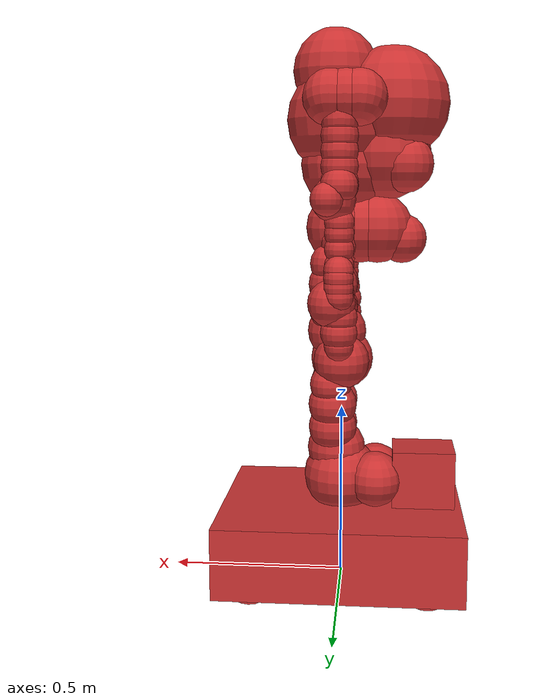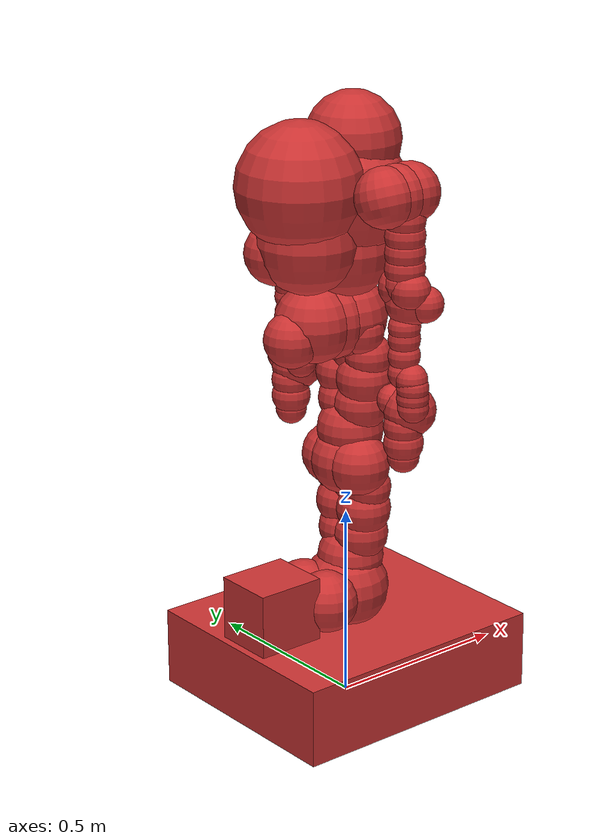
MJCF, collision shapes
<mujoco model="rby1">
  <option timestep="0.001" integrator="implicitfast" solver="Newton" iterations="80" tolerance="1e-7"/>
  <compiler angle="radian"/>
  <size memory="32M"/>
  <visual>
    <global offwidth="800" offheight="800"/>
    <map force="0.1" zfar="30"/>
    <rgba haze="0.15 0.25 0.35 1"/>
  </visual>
  <default>
    <material shininess="0.25"/>
    <position ctrllimited="true" kp="4000" kv="400"/>
    <default class="visual">
      <material shininess="0.5"/>
      <joint range="0 0" armature="0" damping="0"/>
      <geom type="mesh" contype="0" conaffinity="0" group="2" material="black"/>
    </default>
    <default class="collision">
      <material shininess="0.5"/>
      <joint range="0 0" armature="0" damping="0"/>
      <geom group="3" material="red"/>
    </default>
  </default>
  <asset>
    <texture type="skybox" builtin="gradient" rgb1="0.3 0.5 0.7" rgb2="0 0 0" width="512" height="3072"/>
    <texture type="2d" name="plane" builtin="checker" mark="cross" rgb1="0.2 0.3 0.4" rgb2="0.1 0.15 0.2" markrgb="0.8 0.8 0.8" width="512" height="512"/>
    <material name="plane" texture="plane" texuniform="true" reflectance="0.3"/>
    <material name="black" rgba="0.2 0.2 0.2 1"/>
    <material name="red" rgba="0.8 0.2 0.2 0.4"/>
    <material name="0,0,0" specular="1" shininess="1" rgba="0 0 0 1"/>
    <material name="10,10,10_LINK_6" specular="1" shininess="0.2" rgba="0.039216 0.039216 0.039216 1"/>
    <material name="10,10,10" specular="0.039216" shininess="1" rgba="0.039216 0.039216 0.039216 1"/>
    <material name="163,163,175" specular="1" shininess="0.2" rgba="0.639216 0.639216 0.686275 1"/>
    <material name="178,0,0" specular="1" shininess="0.2" rgba="0.698039 0 0 1"/>
    <material name="190,188,186" specular="1" shininess="0.2" rgba="0.745098 0.737255 0.729412 1"/>
    <material name="191,191,191" specular="0" shininess="0.3" rgba="0.74902 0.74902 0.74902 1"/>
    <material name="192,192,192" specular="1" shininess="0.2" rgba="0.752941 0.752941 0.752941 1"/>
    <material name="216,214,214" specular="1" shininess="0.2" rgba="0.847059 0.839216 0.839216 1"/>
    <material name="237,255,168" specular="1" shininess="0.2" rgba="0.929412 1 0.658824 1"/>
    <material name="242,236,238" specular="1" shininess="0.2" rgba="0.94902 0.92549 0.933333 1"/>
    <material name="244,244,244" specular="0.956863" shininess="1" rgba="0.956863 0.956863 0.956863 1"/>
    <material name="25,25,25" specular="1" shininess="0.8" rgba="0.1 0.1 0.1 1"/>
    <material name="254,254,255_LINK_6" specular="1" shininess="0.2" rgba="0.996078 0.996078 1 1"/>
    <material name="254,254,255" specular="0.997385" shininess="1" rgba="0.996078 0.996078 1 1"/>
    <material name="65,55,50" specular="1" shininess="0.2" rgba="0.254902 0.215686 0.196078 1"/>
    <material name="65,65,65" specular="0.254902" shininess="1" rgba="0.254902 0.254902 0.254902 1"/>
    <material name="69,69,69_1" specular="0" shininess="1" rgba="0.270588 0.270588 0.270588 1"/>
    <material name="69,69,69" specular="1" shininess="1" rgba="0.270588 0.270588 0.270588 1"/>
    <material name="70,70,70_FINGER" specular="0.27451" shininess="1" rgba="0.27451 0.27451 0.27451 1"/>
    <material name="70,70,70" specular="1" shininess="0.2" rgba="0.27451 0.27451 0.27451 1"/>
    <material name="79,79,79" specular="1" shininess="0.2" rgba="0.309804 0.309804 0.309804 1"/>
    <material name="80,80,80" specular="0" shininess="0.5" rgba="0.313725 0.313725 0.313725 1"/>
    <material name="156,168,171" specular="1" shininess="0.2" rgba="0.611765 0.658824 0.670588 1"/>
    <material name="130,130,130" specular="0" shininess="0.2" rgba="0.509804 0.509804 0.509804 1"/>
    <material name="90,90,90" specular="0.352941" shininess="1" rgba="0.352941 0.352941 0.352941 1"/>
    <material name="255,255,255" specular="1" shininess="0.2"/>
    <material name="235,235,235" specular="1" shininess="0.2" rgba="0.921569 0.921569 0.921569 1"/>
    <mesh name="base_0" file="././assets/base/base_0.obj"/>
    <mesh name="base_1" file="././assets/base/base_1.obj"/>
    <mesh name="base_2" file="././assets/base/base_2.obj"/>
    <mesh name="base_3" file="././assets/base/base_3.obj"/>
    <mesh name="base_4" file="././assets/base/base_4.obj"/>
    <mesh name="base_5" file="././assets/base/base_5.obj"/>
    <mesh name="base_6" file="././assets/base/base_6.obj"/>
    <mesh name="base_7" file="././assets/base/base_7.obj"/>
    <mesh name="MECANUM_WHEEL" file="././assets/MECANUM_WHEEL/MECANUM_WHEEL.obj"/>
    <mesh name="MECANUM_WHEEL_collision_0" file="././assets/MECANUM_WHEEL/MECANUM_WHEEL_collision_0.obj"/>
    <mesh name="MECANUM_WHEEL_collision_1" file="././assets/MECANUM_WHEEL/MECANUM_WHEEL_collision_1.obj"/>
    <mesh name="MECANUM_WHEEL_collision_2" file="././assets/MECANUM_WHEEL/MECANUM_WHEEL_collision_2.obj"/>
    <mesh name="MECANUM_WHEEL_collision_3" file="././assets/MECANUM_WHEEL/MECANUM_WHEEL_collision_3.obj"/>
    <mesh name="MECANUM_WHEEL_collision_4" file="././assets/MECANUM_WHEEL/MECANUM_WHEEL_collision_4.obj"/>
    <mesh name="MECANUM_WHEEL_collision_5" file="././assets/MECANUM_WHEEL/MECANUM_WHEEL_collision_5.obj"/>
    <mesh name="MECANUM_WHEEL_collision_6" file="././assets/MECANUM_WHEEL/MECANUM_WHEEL_collision_6.obj"/>
    <mesh name="MECANUM_WHEEL_collision_7" file="././assets/MECANUM_WHEEL/MECANUM_WHEEL_collision_7.obj"/>
    <mesh name="MECANUM_WHEEL_collision_8" file="././assets/MECANUM_WHEEL/MECANUM_WHEEL_collision_8.obj"/>
    <mesh name="MECANUM_WHEEL_collision_9" file="././assets/MECANUM_WHEEL/MECANUM_WHEEL_collision_9.obj"/>
    <mesh name="MECANUM_WHEEL_collision_10" file="././assets/MECANUM_WHEEL/MECANUM_WHEEL_collision_10.obj"/>
    <mesh name="MECANUM_WHEEL_collision_11" file="././assets/MECANUM_WHEEL/MECANUM_WHEEL_collision_11.obj"/>
    <mesh name="MECANUM_WHEEL_collision_12" file="././assets/MECANUM_WHEEL/MECANUM_WHEEL_collision_12.obj"/>
    <mesh name="MECANUM_WHEEL_collision_13" file="././assets/MECANUM_WHEEL/MECANUM_WHEEL_collision_13.obj"/>
    <mesh name="MECANUM_WHEEL_collision_14" file="././assets/MECANUM_WHEEL/MECANUM_WHEEL_collision_14.obj"/>
    <mesh name="MECANUM_WHEEL_collision_15" file="././assets/MECANUM_WHEEL/MECANUM_WHEEL_collision_15.obj"/>
    <mesh name="MECANUM_WHEEL_collision_16" file="././assets/MECANUM_WHEEL/MECANUM_WHEEL_collision_16.obj"/>
    <mesh name="MECANUM_WHEEL_collision_17" file="././assets/MECANUM_WHEEL/MECANUM_WHEEL_collision_17.obj"/>
    <mesh name="MECANUM_WHEEL_collision_18" file="././assets/MECANUM_WHEEL/MECANUM_WHEEL_collision_18.obj"/>
    <mesh name="MECANUM_WHEEL_collision_19" file="././assets/MECANUM_WHEEL/MECANUM_WHEEL_collision_19.obj"/>
    <mesh name="MECANUM_WHEEL_collision_20" file="././assets/MECANUM_WHEEL/MECANUM_WHEEL_collision_20.obj"/>
    <mesh name="MECANUM_WHEEL_collision_21" file="././assets/MECANUM_WHEEL/MECANUM_WHEEL_collision_21.obj"/>
    <mesh name="MECANUM_WHEEL_collision_22" file="././assets/MECANUM_WHEEL/MECANUM_WHEEL_collision_22.obj"/>
    <mesh name="MECANUM_WHEEL_collision_23" file="././assets/MECANUM_WHEEL/MECANUM_WHEEL_collision_23.obj"/>
    <mesh name="MECANUM_WHEEL_collision_24" file="././assets/MECANUM_WHEEL/MECANUM_WHEEL_collision_24.obj"/>
    <mesh name="MECANUM_WHEEL_collision_25" file="././assets/MECANUM_WHEEL/MECANUM_WHEEL_collision_25.obj"/>
    <mesh name="MECANUM_WHEEL_collision_26" file="././assets/MECANUM_WHEEL/MECANUM_WHEEL_collision_26.obj"/>
    <mesh name="MECANUM_WHEEL_collision_27" file="././assets/MECANUM_WHEEL/MECANUM_WHEEL_collision_27.obj"/>
    <mesh name="MECANUM_WHEEL_collision_28" file="././assets/MECANUM_WHEEL/MECANUM_WHEEL_collision_28.obj"/>
    <mesh name="MECANUM_WHEEL_collision_29" file="././assets/MECANUM_WHEEL/MECANUM_WHEEL_collision_29.obj"/>
    <mesh name="MECANUM_WHEEL_collision_30" file="././assets/MECANUM_WHEEL/MECANUM_WHEEL_collision_30.obj"/>
    <mesh name="MECANUM_WHEEL_collision_31" file="././assets/MECANUM_WHEEL/MECANUM_WHEEL_collision_31.obj"/>
    <mesh name="MECANUM_WHEEL_collision_32" file="././assets/MECANUM_WHEEL/MECANUM_WHEEL_collision_32.obj"/>
    <mesh name="MECANUM_WHEEL_collision_33" file="././assets/MECANUM_WHEEL/MECANUM_WHEEL_collision_33.obj"/>
    <mesh name="MECANUM_WHEEL_collision_34" file="././assets/MECANUM_WHEEL/MECANUM_WHEEL_collision_34.obj"/>
    <mesh name="MECANUM_WHEEL_collision_35" file="././assets/MECANUM_WHEEL/MECANUM_WHEEL_collision_35.obj"/>
    <mesh name="MECANUM_WHEEL_collision_36" file="././assets/MECANUM_WHEEL/MECANUM_WHEEL_collision_36.obj"/>
    <mesh name="MECANUM_WHEEL_collision_37" file="././assets/MECANUM_WHEEL/MECANUM_WHEEL_collision_37.obj"/>
    <mesh name="MECANUM_WHEEL_collision_38" file="././assets/MECANUM_WHEEL/MECANUM_WHEEL_collision_38.obj"/>
    <mesh name="MECANUM_WHEEL_collision_39" file="././assets/MECANUM_WHEEL/MECANUM_WHEEL_collision_39.obj"/>
    <mesh name="MECANUM_WHEEL_collision_40" file="././assets/MECANUM_WHEEL/MECANUM_WHEEL_collision_40.obj"/>
    <mesh name="MECANUM_WHEEL_collision_41" file="././assets/MECANUM_WHEEL/MECANUM_WHEEL_collision_41.obj"/>
    <mesh name="MECANUM_WHEEL_collision_42" file="././assets/MECANUM_WHEEL/MECANUM_WHEEL_collision_42.obj"/>
    <mesh name="MECANUM_WHEEL_collision_43" file="././assets/MECANUM_WHEEL/MECANUM_WHEEL_collision_43.obj"/>
    <mesh name="MECANUM_WHEEL_collision_44" file="././assets/MECANUM_WHEEL/MECANUM_WHEEL_collision_44.obj"/>
    <mesh name="MECANUM_WHEEL_collision_45" file="././assets/MECANUM_WHEEL/MECANUM_WHEEL_collision_45.obj"/>
    <mesh name="MECANUM_WHEEL_collision_46" file="././assets/MECANUM_WHEEL/MECANUM_WHEEL_collision_46.obj"/>
    <mesh name="MECANUM_WHEEL_collision_47" file="././assets/MECANUM_WHEEL/MECANUM_WHEEL_collision_47.obj"/>
    <mesh name="MECANUM_WHEEL_collision_48" file="././assets/MECANUM_WHEEL/MECANUM_WHEEL_collision_48.obj"/>
    <mesh name="MECANUM_WHEEL_collision_49" file="././assets/MECANUM_WHEEL/MECANUM_WHEEL_collision_49.obj"/>
    <mesh name="MECANUM_WHEEL_collision_50" file="././assets/MECANUM_WHEEL/MECANUM_WHEEL_collision_50.obj"/>
    <mesh name="MECANUM_WHEEL_collision_51" file="././assets/MECANUM_WHEEL/MECANUM_WHEEL_collision_51.obj"/>
    <mesh name="MECANUM_WHEEL_collision_52" file="././assets/MECANUM_WHEEL/MECANUM_WHEEL_collision_52.obj"/>
    <mesh name="MECANUM_WHEEL_collision_53" file="././assets/MECANUM_WHEEL/MECANUM_WHEEL_collision_53.obj"/>
    <mesh name="MECANUM_WHEEL_collision_54" file="././assets/MECANUM_WHEEL/MECANUM_WHEEL_collision_54.obj"/>
    <mesh name="MECANUM_WHEEL_collision_55" file="././assets/MECANUM_WHEEL/MECANUM_WHEEL_collision_55.obj"/>
    <mesh name="MECANUM_WHEEL_collision_56" file="././assets/MECANUM_WHEEL/MECANUM_WHEEL_collision_56.obj"/>
    <mesh name="MECANUM_WHEEL_collision_57" file="././assets/MECANUM_WHEEL/MECANUM_WHEEL_collision_57.obj"/>
    <mesh name="MECANUM_WHEEL_collision_58" file="././assets/MECANUM_WHEEL/MECANUM_WHEEL_collision_58.obj"/>
    <mesh name="MECANUM_WHEEL_collision_59" file="././assets/MECANUM_WHEEL/MECANUM_WHEEL_collision_59.obj"/>
    <mesh name="MECANUM_WHEEL_collision_60" file="././assets/MECANUM_WHEEL/MECANUM_WHEEL_collision_60.obj"/>
    <mesh name="MECANUM_WHEEL_collision_61" file="././assets/MECANUM_WHEEL/MECANUM_WHEEL_collision_61.obj"/>
    <mesh name="MECANUM_WHEEL_collision_62" file="././assets/MECANUM_WHEEL/MECANUM_WHEEL_collision_62.obj"/>
    <mesh name="MECANUM_WHEEL_collision_63" file="././assets/MECANUM_WHEEL/MECANUM_WHEEL_collision_63.obj"/>
    <mesh name="MECANUM_WHEEL_collision_64" file="././assets/MECANUM_WHEEL/MECANUM_WHEEL_collision_64.obj"/>
    <mesh name="MECANUM_WHEEL_collision_65" file="././assets/MECANUM_WHEEL/MECANUM_WHEEL_collision_65.obj"/>
    <mesh name="MECANUM_WHEEL_collision_66" file="././assets/MECANUM_WHEEL/MECANUM_WHEEL_collision_66.obj"/>
    <mesh name="MECANUM_WHEEL_collision_67" file="././assets/MECANUM_WHEEL/MECANUM_WHEEL_collision_67.obj"/>
    <mesh name="MECANUM_WHEEL_collision_68" file="././assets/MECANUM_WHEEL/MECANUM_WHEEL_collision_68.obj"/>
    <mesh name="MECANUM_WHEEL_collision_69" file="././assets/MECANUM_WHEEL/MECANUM_WHEEL_collision_69.obj"/>
    <mesh name="MECANUM_WHEEL_collision_70" file="././assets/MECANUM_WHEEL/MECANUM_WHEEL_collision_70.obj"/>
    <mesh name="MECANUM_WHEEL_M" file="././assets/MECANUM_WHEEL_M/MECANUM_WHEEL_M.obj"/>
    <mesh name="MECANUM_WHEEL_M_collision_0" file="././assets/MECANUM_WHEEL_M/MECANUM_WHEEL_M_collision_0.obj"/>
    <mesh name="MECANUM_WHEEL_M_collision_1" file="././assets/MECANUM_WHEEL_M/MECANUM_WHEEL_M_collision_1.obj"/>
    <mesh name="MECANUM_WHEEL_M_collision_2" file="././assets/MECANUM_WHEEL_M/MECANUM_WHEEL_M_collision_2.obj"/>
    <mesh name="MECANUM_WHEEL_M_collision_3" file="././assets/MECANUM_WHEEL_M/MECANUM_WHEEL_M_collision_3.obj"/>
    <mesh name="MECANUM_WHEEL_M_collision_4" file="././assets/MECANUM_WHEEL_M/MECANUM_WHEEL_M_collision_4.obj"/>
    <mesh name="MECANUM_WHEEL_M_collision_5" file="././assets/MECANUM_WHEEL_M/MECANUM_WHEEL_M_collision_5.obj"/>
    <mesh name="MECANUM_WHEEL_M_collision_6" file="././assets/MECANUM_WHEEL_M/MECANUM_WHEEL_M_collision_6.obj"/>
    <mesh name="MECANUM_WHEEL_M_collision_7" file="././assets/MECANUM_WHEEL_M/MECANUM_WHEEL_M_collision_7.obj"/>
    <mesh name="MECANUM_WHEEL_M_collision_8" file="././assets/MECANUM_WHEEL_M/MECANUM_WHEEL_M_collision_8.obj"/>
    <mesh name="MECANUM_WHEEL_M_collision_9" file="././assets/MECANUM_WHEEL_M/MECANUM_WHEEL_M_collision_9.obj"/>
    <mesh name="MECANUM_WHEEL_M_collision_10" file="././assets/MECANUM_WHEEL_M/MECANUM_WHEEL_M_collision_10.obj"/>
    <mesh name="MECANUM_WHEEL_M_collision_11" file="././assets/MECANUM_WHEEL_M/MECANUM_WHEEL_M_collision_11.obj"/>
    <mesh name="MECANUM_WHEEL_M_collision_12" file="././assets/MECANUM_WHEEL_M/MECANUM_WHEEL_M_collision_12.obj"/>
    <mesh name="MECANUM_WHEEL_M_collision_13" file="././assets/MECANUM_WHEEL_M/MECANUM_WHEEL_M_collision_13.obj"/>
    <mesh name="MECANUM_WHEEL_M_collision_14" file="././assets/MECANUM_WHEEL_M/MECANUM_WHEEL_M_collision_14.obj"/>
    <mesh name="MECANUM_WHEEL_M_collision_15" file="././assets/MECANUM_WHEEL_M/MECANUM_WHEEL_M_collision_15.obj"/>
    <mesh name="MECANUM_WHEEL_M_collision_16" file="././assets/MECANUM_WHEEL_M/MECANUM_WHEEL_M_collision_16.obj"/>
    <mesh name="MECANUM_WHEEL_M_collision_17" file="././assets/MECANUM_WHEEL_M/MECANUM_WHEEL_M_collision_17.obj"/>
    <mesh name="MECANUM_WHEEL_M_collision_18" file="././assets/MECANUM_WHEEL_M/MECANUM_WHEEL_M_collision_18.obj"/>
    <mesh name="MECANUM_WHEEL_M_collision_19" file="././assets/MECANUM_WHEEL_M/MECANUM_WHEEL_M_collision_19.obj"/>
    <mesh name="MECANUM_WHEEL_M_collision_20" file="././assets/MECANUM_WHEEL_M/MECANUM_WHEEL_M_collision_20.obj"/>
    <mesh name="MECANUM_WHEEL_M_collision_21" file="././assets/MECANUM_WHEEL_M/MECANUM_WHEEL_M_collision_21.obj"/>
    <mesh name="MECANUM_WHEEL_M_collision_22" file="././assets/MECANUM_WHEEL_M/MECANUM_WHEEL_M_collision_22.obj"/>
    <mesh name="MECANUM_WHEEL_M_collision_23" file="././assets/MECANUM_WHEEL_M/MECANUM_WHEEL_M_collision_23.obj"/>
    <mesh name="MECANUM_WHEEL_M_collision_24" file="././assets/MECANUM_WHEEL_M/MECANUM_WHEEL_M_collision_24.obj"/>
    <mesh name="MECANUM_WHEEL_M_collision_25" file="././assets/MECANUM_WHEEL_M/MECANUM_WHEEL_M_collision_25.obj"/>
    <mesh name="MECANUM_WHEEL_M_collision_26" file="././assets/MECANUM_WHEEL_M/MECANUM_WHEEL_M_collision_26.obj"/>
    <mesh name="MECANUM_WHEEL_M_collision_27" file="././assets/MECANUM_WHEEL_M/MECANUM_WHEEL_M_collision_27.obj"/>
    <mesh name="MECANUM_WHEEL_M_collision_28" file="././assets/MECANUM_WHEEL_M/MECANUM_WHEEL_M_collision_28.obj"/>
    <mesh name="MECANUM_WHEEL_M_collision_29" file="././assets/MECANUM_WHEEL_M/MECANUM_WHEEL_M_collision_29.obj"/>
    <mesh name="MECANUM_WHEEL_M_collision_30" file="././assets/MECANUM_WHEEL_M/MECANUM_WHEEL_M_collision_30.obj"/>
    <mesh name="MECANUM_WHEEL_M_collision_31" file="././assets/MECANUM_WHEEL_M/MECANUM_WHEEL_M_collision_31.obj"/>
    <mesh name="MECANUM_WHEEL_M_collision_32" file="././assets/MECANUM_WHEEL_M/MECANUM_WHEEL_M_collision_32.obj"/>
    <mesh name="MECANUM_WHEEL_M_collision_33" file="././assets/MECANUM_WHEEL_M/MECANUM_WHEEL_M_collision_33.obj"/>
    <mesh name="MECANUM_WHEEL_M_collision_34" file="././assets/MECANUM_WHEEL_M/MECANUM_WHEEL_M_collision_34.obj"/>
    <mesh name="MECANUM_WHEEL_M_collision_35" file="././assets/MECANUM_WHEEL_M/MECANUM_WHEEL_M_collision_35.obj"/>
    <mesh name="MECANUM_WHEEL_M_collision_36" file="././assets/MECANUM_WHEEL_M/MECANUM_WHEEL_M_collision_36.obj"/>
    <mesh name="MECANUM_WHEEL_M_collision_37" file="././assets/MECANUM_WHEEL_M/MECANUM_WHEEL_M_collision_37.obj"/>
    <mesh name="MECANUM_WHEEL_M_collision_38" file="././assets/MECANUM_WHEEL_M/MECANUM_WHEEL_M_collision_38.obj"/>
    <mesh name="MECANUM_WHEEL_M_collision_39" file="././assets/MECANUM_WHEEL_M/MECANUM_WHEEL_M_collision_39.obj"/>
    <mesh name="MECANUM_WHEEL_M_collision_40" file="././assets/MECANUM_WHEEL_M/MECANUM_WHEEL_M_collision_40.obj"/>
    <mesh name="MECANUM_WHEEL_M_collision_41" file="././assets/MECANUM_WHEEL_M/MECANUM_WHEEL_M_collision_41.obj"/>
    <mesh name="MECANUM_WHEEL_M_collision_42" file="././assets/MECANUM_WHEEL_M/MECANUM_WHEEL_M_collision_42.obj"/>
    <mesh name="MECANUM_WHEEL_M_collision_43" file="././assets/MECANUM_WHEEL_M/MECANUM_WHEEL_M_collision_43.obj"/>
    <mesh name="MECANUM_WHEEL_M_collision_44" file="././assets/MECANUM_WHEEL_M/MECANUM_WHEEL_M_collision_44.obj"/>
    <mesh name="MECANUM_WHEEL_M_collision_45" file="././assets/MECANUM_WHEEL_M/MECANUM_WHEEL_M_collision_45.obj"/>
    <mesh name="MECANUM_WHEEL_M_collision_46" file="././assets/MECANUM_WHEEL_M/MECANUM_WHEEL_M_collision_46.obj"/>
    <mesh name="MECANUM_WHEEL_M_collision_47" file="././assets/MECANUM_WHEEL_M/MECANUM_WHEEL_M_collision_47.obj"/>
    <mesh name="MECANUM_WHEEL_M_collision_48" file="././assets/MECANUM_WHEEL_M/MECANUM_WHEEL_M_collision_48.obj"/>
    <mesh name="MECANUM_WHEEL_M_collision_49" file="././assets/MECANUM_WHEEL_M/MECANUM_WHEEL_M_collision_49.obj"/>
    <mesh name="MECANUM_WHEEL_M_collision_50" file="././assets/MECANUM_WHEEL_M/MECANUM_WHEEL_M_collision_50.obj"/>
    <mesh name="MECANUM_WHEEL_M_collision_51" file="././assets/MECANUM_WHEEL_M/MECANUM_WHEEL_M_collision_51.obj"/>
    <mesh name="MECANUM_WHEEL_M_collision_52" file="././assets/MECANUM_WHEEL_M/MECANUM_WHEEL_M_collision_52.obj"/>
    <mesh name="MECANUM_WHEEL_M_collision_53" file="././assets/MECANUM_WHEEL_M/MECANUM_WHEEL_M_collision_53.obj"/>
    <mesh name="MECANUM_WHEEL_M_collision_54" file="././assets/MECANUM_WHEEL_M/MECANUM_WHEEL_M_collision_54.obj"/>
    <mesh name="MECANUM_WHEEL_M_collision_55" file="././assets/MECANUM_WHEEL_M/MECANUM_WHEEL_M_collision_55.obj"/>
    <mesh name="MECANUM_WHEEL_M_collision_56" file="././assets/MECANUM_WHEEL_M/MECANUM_WHEEL_M_collision_56.obj"/>
    <mesh name="MECANUM_WHEEL_M_collision_57" file="././assets/MECANUM_WHEEL_M/MECANUM_WHEEL_M_collision_57.obj"/>
    <mesh name="MECANUM_WHEEL_M_collision_58" file="././assets/MECANUM_WHEEL_M/MECANUM_WHEEL_M_collision_58.obj"/>
    <mesh name="MECANUM_WHEEL_M_collision_59" file="././assets/MECANUM_WHEEL_M/MECANUM_WHEEL_M_collision_59.obj"/>
    <mesh name="MECANUM_WHEEL_M_collision_60" file="././assets/MECANUM_WHEEL_M/MECANUM_WHEEL_M_collision_60.obj"/>
    <mesh name="MECANUM_WHEEL_M_collision_61" file="././assets/MECANUM_WHEEL_M/MECANUM_WHEEL_M_collision_61.obj"/>
    <mesh name="MECANUM_WHEEL_M_collision_62" file="././assets/MECANUM_WHEEL_M/MECANUM_WHEEL_M_collision_62.obj"/>
    <mesh name="MECANUM_WHEEL_M_collision_63" file="././assets/MECANUM_WHEEL_M/MECANUM_WHEEL_M_collision_63.obj"/>
    <mesh name="MECANUM_WHEEL_M_collision_64" file="././assets/MECANUM_WHEEL_M/MECANUM_WHEEL_M_collision_64.obj"/>
    <mesh name="MECANUM_WHEEL_M_collision_65" file="././assets/MECANUM_WHEEL_M/MECANUM_WHEEL_M_collision_65.obj"/>
    <mesh name="MECANUM_WHEEL_M_collision_66" file="././assets/MECANUM_WHEEL_M/MECANUM_WHEEL_M_collision_66.obj"/>
    <mesh name="MECANUM_WHEEL_M_collision_67" file="././assets/MECANUM_WHEEL_M/MECANUM_WHEEL_M_collision_67.obj"/>
    <mesh name="MECANUM_WHEEL_M_collision_68" file="././assets/MECANUM_WHEEL_M/MECANUM_WHEEL_M_collision_68.obj"/>
    <mesh name="MECANUM_WHEEL_M_collision_69" file="././assets/MECANUM_WHEEL_M/MECANUM_WHEEL_M_collision_69.obj"/>
    <mesh name="MECANUM_WHEEL_M_collision_70" file="././assets/MECANUM_WHEEL_M/MECANUM_WHEEL_M_collision_70.obj"/>
    <mesh name="MECANUM_WHEEL_M_collision_71" file="././assets/MECANUM_WHEEL_M/MECANUM_WHEEL_M_collision_71.obj"/>
    <mesh name="MECANUM_WHEEL_M_collision_72" file="././assets/MECANUM_WHEEL_M/MECANUM_WHEEL_M_collision_72.obj"/>
    <mesh name="MECANUM_WHEEL_M_collision_73" file="././assets/MECANUM_WHEEL_M/MECANUM_WHEEL_M_collision_73.obj"/>
    <mesh name="MECANUM_WHEEL_M_collision_74" file="././assets/MECANUM_WHEEL_M/MECANUM_WHEEL_M_collision_74.obj"/>
    <mesh name="MECANUM_WHEEL_M_collision_75" file="././assets/MECANUM_WHEEL_M/MECANUM_WHEEL_M_collision_75.obj"/>
    <mesh name="MECANUM_WHEEL_M_collision_76" file="././assets/MECANUM_WHEEL_M/MECANUM_WHEEL_M_collision_76.obj"/>
    <mesh name="MECANUM_WHEEL_M_collision_77" file="././assets/MECANUM_WHEEL_M/MECANUM_WHEEL_M_collision_77.obj"/>
    <mesh name="MECANUM_WHEEL_M_collision_78" file="././assets/MECANUM_WHEEL_M/MECANUM_WHEEL_M_collision_78.obj"/>
    <mesh name="MECANUM_WHEEL_M_collision_79" file="././assets/MECANUM_WHEEL_M/MECANUM_WHEEL_M_collision_79.obj"/>
    <mesh name="MECANUM_WHEEL_M_collision_80" file="././assets/MECANUM_WHEEL_M/MECANUM_WHEEL_M_collision_80.obj"/>
    <mesh name="MECANUM_WHEEL_M_collision_81" file="././assets/MECANUM_WHEEL_M/MECANUM_WHEEL_M_collision_81.obj"/>
    <mesh name="MECANUM_WHEEL_M_collision_82" file="././assets/MECANUM_WHEEL_M/MECANUM_WHEEL_M_collision_82.obj"/>
    <mesh name="MECANUM_WHEEL_M_collision_83" file="././assets/MECANUM_WHEEL_M/MECANUM_WHEEL_M_collision_83.obj"/>
    <mesh name="MECANUM_WHEEL_M_collision_84" file="././assets/MECANUM_WHEEL_M/MECANUM_WHEEL_M_collision_84.obj"/>
    <mesh name="WHEEL" file="././assets/WHEEL/WHEEL.obj"/>
    <mesh name="WHEEL_collision_0" file="././assets/WHEEL/WHEEL_collision_0.obj"/>
    <mesh name="WHEEL_collision_1" file="././assets/WHEEL/WHEEL_collision_1.obj"/>
    <mesh name="WHEEL_collision_2" file="././assets/WHEEL/WHEEL_collision_2.obj"/>
    <mesh name="WHEEL_collision_3" file="././assets/WHEEL/WHEEL_collision_3.obj"/>
    <mesh name="WHEEL_collision_4" file="././assets/WHEEL/WHEEL_collision_4.obj"/>
    <mesh name="WHEEL_collision_5" file="././assets/WHEEL/WHEEL_collision_5.obj"/>
    <mesh name="WHEEL_collision_6" file="././assets/WHEEL/WHEEL_collision_6.obj"/>
    <mesh name="WHEEL_collision_7" file="././assets/WHEEL/WHEEL_collision_7.obj"/>
    <mesh name="WHEEL_collision_8" file="././assets/WHEEL/WHEEL_collision_8.obj"/>
    <mesh name="WHEEL_collision_9" file="././assets/WHEEL/WHEEL_collision_9.obj"/>
    <mesh name="WHEEL_collision_10" file="././assets/WHEEL/WHEEL_collision_10.obj"/>
    <mesh name="WHEEL_collision_11" file="././assets/WHEEL/WHEEL_collision_11.obj"/>
    <mesh name="WHEEL_collision_12" file="././assets/WHEEL/WHEEL_collision_12.obj"/>
    <mesh name="WHEEL_collision_13" file="././assets/WHEEL/WHEEL_collision_13.obj"/>
    <mesh name="WHEEL_collision_14" file="././assets/WHEEL/WHEEL_collision_14.obj"/>
    <mesh name="WHEEL_collision_15" file="././assets/WHEEL/WHEEL_collision_15.obj"/>
    <mesh name="WHEEL_collision_16" file="././assets/WHEEL/WHEEL_collision_16.obj"/>
    <mesh name="WHEEL_collision_17" file="././assets/WHEEL/WHEEL_collision_17.obj"/>
    <mesh name="WHEEL_collision_18" file="././assets/WHEEL/WHEEL_collision_18.obj"/>
    <mesh name="WHEEL_collision_19" file="././assets/WHEEL/WHEEL_collision_19.obj"/>
    <mesh name="WHEEL_collision_20" file="././assets/WHEEL/WHEEL_collision_20.obj"/>
    <mesh name="WHEEL_collision_21" file="././assets/WHEEL/WHEEL_collision_21.obj"/>
    <mesh name="WHEEL_collision_22" file="././assets/WHEEL/WHEEL_collision_22.obj"/>
    <mesh name="WHEEL_collision_23" file="././assets/WHEEL/WHEEL_collision_23.obj"/>
    <mesh name="WHEEL_collision_24" file="././assets/WHEEL/WHEEL_collision_24.obj"/>
    <mesh name="WHEEL_collision_25" file="././assets/WHEEL/WHEEL_collision_25.obj"/>
    <mesh name="WHEEL_collision_26" file="././assets/WHEEL/WHEEL_collision_26.obj"/>
    <mesh name="WHEEL_collision_27" file="././assets/WHEEL/WHEEL_collision_27.obj"/>
    <mesh name="WHEEL_collision_28" file="././assets/WHEEL/WHEEL_collision_28.obj"/>
    <mesh name="WHEEL_collision_29" file="././assets/WHEEL/WHEEL_collision_29.obj"/>
    <mesh name="WHEEL_collision_30" file="././assets/WHEEL/WHEEL_collision_30.obj"/>
    <mesh name="WHEEL_collision_31" file="././assets/WHEEL/WHEEL_collision_31.obj"/>
    <mesh name="WHEEL_collision_32" file="././assets/WHEEL/WHEEL_collision_32.obj"/>
    <mesh name="WHEEL_collision_33" file="././assets/WHEEL/WHEEL_collision_33.obj"/>
    <mesh name="WHEEL_collision_34" file="././assets/WHEEL/WHEEL_collision_34.obj"/>
    <mesh name="WHEEL_collision_35" file="././assets/WHEEL/WHEEL_collision_35.obj"/>
    <mesh name="WHEEL_collision_36" file="././assets/WHEEL/WHEEL_collision_36.obj"/>
    <mesh name="WHEEL_collision_37" file="././assets/WHEEL/WHEEL_collision_37.obj"/>
    <mesh name="EE_BODY" file="././assets/EE_BODY/EE_BODY.obj"/>
    <mesh name="EE_FINGER_0" file="././assets/EE_FINGER/EE_FINGER_0.obj"/>
    <mesh name="EE_FINGER_1" file="././assets/EE_FINGER/EE_FINGER_1.obj"/>
    <mesh name="FT_SENSOR_L_0" file="././assets/FT_SENSOR_L/FT_SENSOR_L_0.obj"/>
    <mesh name="FT_SENSOR_L_1" file="././assets/FT_SENSOR_L/FT_SENSOR_L_1.obj"/>
    <mesh name="FT_SENSOR_L_2" file="././assets/FT_SENSOR_L/FT_SENSOR_L_2.obj"/>
    <mesh name="FT_SENSOR_L_3" file="././assets/FT_SENSOR_L/FT_SENSOR_L_3.obj"/>
    <mesh name="FT_SENSOR_L_4" file="././assets/FT_SENSOR_L/FT_SENSOR_L_4.obj"/>
    <mesh name="FT_SENSOR_L_5" file="././assets/FT_SENSOR_L/FT_SENSOR_L_5.obj"/>
    <mesh name="FT_SENSOR_L_6" file="././assets/FT_SENSOR_L/FT_SENSOR_L_6.obj"/>
    <mesh name="FT_SENSOR_L_7" file="././assets/FT_SENSOR_L/FT_SENSOR_L_7.obj"/>
    <mesh name="FT_SENSOR_L_8" file="././assets/FT_SENSOR_L/FT_SENSOR_L_8.obj"/>
    <mesh name="FT_SENSOR_L_9" file="././assets/FT_SENSOR_L/FT_SENSOR_L_9.obj"/>
    <mesh name="FT_SENSOR_L_10" file="././assets/FT_SENSOR_L/FT_SENSOR_L_10.obj"/>
    <mesh name="FT_SENSOR_R_0" file="././assets/FT_SENSOR_R/FT_SENSOR_R_0.obj"/>
    <mesh name="FT_SENSOR_R_1" file="././assets/FT_SENSOR_R/FT_SENSOR_R_1.obj"/>
    <mesh name="FT_SENSOR_R_2" file="././assets/FT_SENSOR_R/FT_SENSOR_R_2.obj"/>
    <mesh name="FT_SENSOR_R_3" file="././assets/FT_SENSOR_R/FT_SENSOR_R_3.obj"/>
    <mesh name="FT_SENSOR_R_4" file="././assets/FT_SENSOR_R/FT_SENSOR_R_4.obj"/>
    <mesh name="FT_SENSOR_R_5" file="././assets/FT_SENSOR_R/FT_SENSOR_R_5.obj"/>
    <mesh name="FT_SENSOR_R_6" file="././assets/FT_SENSOR_R/FT_SENSOR_R_6.obj"/>
    <mesh name="FT_SENSOR_R_7" file="././assets/FT_SENSOR_R/FT_SENSOR_R_7.obj"/>
    <mesh name="FT_SENSOR_R_8" file="././assets/FT_SENSOR_R/FT_SENSOR_R_8.obj"/>
    <mesh name="FT_SENSOR_R_9" file="././assets/FT_SENSOR_R/FT_SENSOR_R_9.obj"/>
    <mesh name="FT_SENSOR_R_10" file="././assets/FT_SENSOR_R/FT_SENSOR_R_10.obj"/>
    <mesh name="LINK_1" file="././assets/LINK_1/LINK_1.obj"/>
    <mesh name="LINK_2_0" file="././assets/LINK_2/LINK_2_0.obj"/>
    <mesh name="LINK_2_1" file="././assets/LINK_2/LINK_2_1.obj"/>
    <mesh name="LINK_3_0" file="././assets/LINK_3/LINK_3_0.obj"/>
    <mesh name="LINK_3_1" file="././assets/LINK_3/LINK_3_1.obj"/>
    <mesh name="LINK_4" file="././assets/LINK_4/LINK_4.obj"/>
    <mesh name="LINK_5" file="././assets/LINK_5/LINK_5.obj"/>
    <mesh name="LINK_6_0" file="././assets/LINK_6/LINK_6_0.obj"/>
    <mesh name="LINK_6_1" file="././assets/LINK_6/LINK_6_1.obj"/>
    <mesh name="LINK_6_2" file="././assets/LINK_6/LINK_6_2.obj"/>
    <mesh name="LINK_6_3" file="././assets/LINK_6/LINK_6_3.obj"/>
    <mesh name="LINK_6_4" file="././assets/LINK_6/LINK_6_4.obj"/>
    <mesh name="LINK_6_5" file="././assets/LINK_6/LINK_6_5.obj"/>
    <mesh name="LINK_7" file="././assets/LINK_7/LINK_7.obj"/>
    <mesh name="LINK_8" file="././assets/LINK_8/LINK_8.obj"/>
    <mesh name="LINK_9_0" file="././assets/LINK_9/LINK_9_0.obj"/>
    <mesh name="LINK_9_1" file="././assets/LINK_9/LINK_9_1.obj"/>
    <mesh name="LINK_10_0" file="././assets/LINK_10/LINK_10_0.obj"/>
    <mesh name="LINK_10_1" file="././assets/LINK_10/LINK_10_1.obj"/>
    <mesh name="LINK_11" file="././assets/LINK_11/LINK_11.obj"/>
    <mesh name="LINK_12_0" file="././assets/LINK_12/LINK_12_0.obj"/>
    <mesh name="LINK_12_1" file="././assets/LINK_12/LINK_12_1.obj"/>
    <mesh name="LINK_13" file="././assets/LINK_13/LINK_13.obj"/>
    <mesh name="LINK_14" file="././assets/LINK_14/LINK_14.obj"/>
    <mesh name="LINK_15" file="././assets/LINK_15/LINK_15.obj"/>
    <mesh name="LINK_16_0" file="././assets/LINK_16/LINK_16_0.obj"/>
    <mesh name="LINK_16_1" file="././assets/LINK_16/LINK_16_1.obj"/>
    <mesh name="LINK_17_0" file="././assets/LINK_17/LINK_17_0.obj"/>
    <mesh name="LINK_17_1" file="././assets/LINK_17/LINK_17_1.obj"/>
    <mesh name="LINK_18" file="././assets/LINK_18/LINK_18.obj"/>
    <mesh name="LINK_19_0" file="././assets/LINK_19/LINK_19_0.obj"/>
    <mesh name="LINK_19_1" file="././assets/LINK_19/LINK_19_1.obj"/>
    <mesh name="LINK_20" file="././assets/LINK_20/LINK_20.obj"/>
    <mesh name="PAN_TILT_1_0" file="././assets/PAN_TILT_1/PAN_TILT_1_0.obj"/>
    <mesh name="PAN_TILT_1_1" file="././assets/PAN_TILT_1/PAN_TILT_1_1.obj"/>
    <mesh name="PAN_TILT_1_2" file="././assets/PAN_TILT_1/PAN_TILT_1_2.obj"/>
    <mesh name="PAN_TILT_1_3" file="././assets/PAN_TILT_1/PAN_TILT_1_3.obj"/>
    <mesh name="PAN_TILT_2_0" file="././assets/PAN_TILT_2/PAN_TILT_2_0.obj"/>
    <mesh name="PAN_TILT_2_1" file="././assets/PAN_TILT_2/PAN_TILT_2_1.obj"/>
    <mesh name="PAN_TILT_2_2" file="././assets/PAN_TILT_2/PAN_TILT_2_2.obj"/>
    <mesh name="PAN_TILT_3_0" file="././assets/PAN_TILT_3/PAN_TILT_3_0.obj"/>
    <mesh name="PAN_TILT_3_1" file="././assets/PAN_TILT_3/PAN_TILT_3_1.obj"/>
  </asset>
  <worldbody>
    <!-- Floor removed - environment provides its own ground plane -->
    <camera name="front_far" pos="-1.5 0 2" quat="0.648521 0.281816 -0.281816 -0.648521" fovy="60"/>
    <light pos="0 0 5" dir="0 0 -1" directional="true" castshadow="false" diffuse="0.8 0.8 0.8" specular="0 0 0"/>
    <body name="base" gravcomp="0.9">
      <inertial pos="-0.0615794 -0.00142271 0.135139" quat="0.00383057 0.733861 -0.00742942 0.679248" mass="60.0804" diaginertia="3.77525 2.99424 1.36264"/>
      <joint name="world_j" type="free" limited="false" actuatorfrclimited="false"/>
      <geom class="visual" material="255,255,255" mesh="base_0"/>
      <geom class="visual" material="90,90,90" mesh="base_1"/>
      <geom class="visual" material="130,130,130" mesh="base_2"/>
      <geom class="visual" material="254,254,255" mesh="base_3"/>
      <geom class="visual" material="156,168,171" mesh="base_4"/>
      <geom class="visual" material="191,191,191" mesh="base_5"/>
      <geom class="visual" material="69,69,69" mesh="base_6"/>
      <geom class="visual" material="70,70,70" mesh="base_7"/>
      <geom class="collision" name="base_col_0" size="0.348 0.3 0.101" pos="-0.002 0 0.119" type="box"/>
      <geom class="collision" name="base_col_1" size="0.09 0.08 0.09" pos="-0.24 0 0.295" type="box"/>
      <body name="wheel_fr_link" pos="0.243 -0.245 0.076">
        <inertial pos="-0.00010511 0.0009458 0" quat="0.707046 0 0 0.707168" mass="2.5441" diaginertia="0.00616429 0.00470985 0.00470754"/>
        <joint name="wheel_fr" pos="0 0 0" axis="0 1 0" limited="true" range="-3.1415 3.1415"/>
        <geom class="collision" name="wheel_fr_col" type="cylinder" size="0.076 0.03" quat="0.70710678 -0.70710678 0 0"/>
        <geom class="visual" material="191,191,191" mesh="MECANUM_WHEEL"/>
      </body>
      <body name="wheel_fl_link" pos="0.243 0.245 0.076">
        <inertial pos="-0.00010433 -0.00094577 0" quat="0.707168 0 0 0.707046" mass="2.54418" diaginertia="0.00616468 0.00471013 0.00470782"/>
        <joint name="wheel_fl" pos="0 0 0" axis="0 1 0" limited="true" range="-3.1415 3.1415"/>
        <geom class="collision" name="wheel_fl_col" type="cylinder" size="0.076 0.03" quat="0.70710678 -0.70710678 0 0"/>
        <geom class="visual" material="191,191,191" mesh="MECANUM_WHEEL_M"/>
      </body>
      <body name="wheel_rr_link" pos="-0.247 -0.245 0.076">
        <inertial pos="-0.00010433 -0.00094577 0" quat="0.707168 0 0 0.707046" mass="2.54418" diaginertia="0.00616468 0.00471013 0.00470782"/>
        <joint name="wheel_rr" pos="0 0 0" axis="0 1 0" limited="true" range="-3.1415 3.1415"/>
        <geom class="collision" name="wheel_rr_col" type="cylinder" size="0.076 0.03" quat="0.70710678 -0.70710678 0 0"/>
        <geom class="visual" material="191,191,191" mesh="MECANUM_WHEEL_M"/>
      </body>
      <body name="wheel_rl_link" pos="-0.247 0.245 0.076">
        <inertial pos="-0.00010511 0.0009458 0" quat="0.707046 0 0 0.707168" mass="2.5441" diaginertia="0.00616429 0.00470985 0.00470754"/>
        <joint name="wheel_rl" pos="0 0 0" axis="0 1 0" limited="true" range="-3.1415 3.1415"/>
        <geom class="collision" name="wheel_rl_col" type="cylinder" size="0.076 0.03" quat="0.70710678 -0.70710678 0 0"/>
        <geom class="visual" material="191,191,191" mesh="MECANUM_WHEEL"/>
      </body>
      <body name="link_torso_0" pos="0 0 0.2965">
        <inertial pos="-0.0884841 0.00021367 4.6e-07" quat="0.443798 0.550483 -0.443815 0.55049" mass="2.24282" diaginertia="0.0189253 0.0143368 0.00985172"/>
        <joint name="torso_0" pos="0 0 0" axis="1 0 0" limited="true" range="-0.349066 0.349066"/>
        <geom class="visual" material="254,254,255" mesh="LINK_1"/>
        <geom class="collision" name="torso_0_col_0" size="0.08" pos="-0.1 0.045 0"/>
        <geom class="collision" name="torso_0_col_1" size="0.08" pos="-0.1 -0.045 0"/>
        <body name="link_torso_1">
          <inertial pos="0.00728955 -0.0172852 0.0691138" quat="0.997768 -0.0453891 0.0382115 -0.0306483" mass="9.72163" diaginertia="0.149421 0.139376 0.0275059"/>
          <joint name="torso_1" pos="0 0 0" axis="0 1 0" limited="true" range="-0.175 1.52173"/>
          <geom class="visual" material="0,0,0" mesh="LINK_2_0"/>
          <geom class="visual" material="254,254,255" mesh="LINK_2_1"/>
          <geom class="collision" name="torso_1_col_0" size="0.11"/>
          <geom class="collision" name="torso_1_col_1" size="0.085" pos="0.015 0 0.08"/>
          <geom class="collision" name="torso_1_col_2" size="0.07" pos="0.025 0.03 0.15"/>
          <geom class="collision" name="torso_1_col_3" size="0.07" pos="0.025 -0.03 0.15"/>
          <geom class="collision" name="torso_1_col_4" size="0.07" pos="0.025 0.04 0.22"/>
          <geom class="collision" name="torso_1_col_5" size="0.07" pos="0.025 -0.04 0.22"/>
          <geom class="collision" name="torso_1_col_6" size="0.06" pos="0.03 0.05 0.28"/>
          <geom class="collision" name="torso_1_col_7" size="0.06" pos="0.03 0 0.28"/>
          <geom class="collision" name="torso_1_col_8" size="0.06" pos="0.03 -0.05 0.28"/>
          <geom class="collision" name="torso_1_col_9" size="0.08" pos="0 0.05 0.35"/>
          <geom class="collision" name="torso_1_col_10" size="0.08" pos="0 -0.05 0.35"/>
          <body name="link_torso_2" pos="0 0 0.35">
            <inertial pos="0.00653835 -0.0176954 0.0563658" quat="0.99687 -0.052526 0.0433482 -0.0401474" mass="9.21692" diaginertia="0.12242 0.116748 0.0292915"/>
            <joint name="torso_2" pos="0 0 0" axis="0 1 0" limited="true" range="-2.47837 0.175"/>
            <geom class="visual" material="10,10,10" mesh="LINK_3_0"/>
            <geom class="visual" material="254,254,255" mesh="LINK_3_1"/>
            <geom class="collision" name="torso_2_col_0" size="0.09"/>
            <geom class="collision" name="torso_2_col_1" size="0.085" pos="0.015 0 0.08"/>
            <geom class="collision" name="torso_2_col_2" size="0.07" pos="0.025 0.03 0.15"/>
            <geom class="collision" name="torso_2_col_3" size="0.07" pos="0.025 -0.03 0.15"/>
            <geom class="collision" name="torso_2_col_4" size="0.07" pos="0.025 0.04 0.22"/>
            <geom class="collision" name="torso_2_col_5" size="0.07" pos="0.025 -0.04 0.22"/>
            <geom class="collision" name="torso_2_col_6" size="0.06" pos="0.03 0.05 0.28"/>
            <geom class="collision" name="torso_2_col_7" size="0.06" pos="0.03 0 0.28"/>
            <geom class="collision" name="torso_2_col_8" size="0.06" pos="0.03 -0.05 0.28"/>
            <geom class="collision" name="torso_2_col_9" size="0.06" pos="0.005 0.05 0.35"/>
            <geom class="collision" name="torso_2_col_10" size="0.06" pos="0.005 -0.05 0.35"/>
            <body name="link_torso_3" pos="0 0 0.35">
              <inertial pos="-0.00574156 -0.0172598 5.61e-05" quat="0.0913806 0.682262 -0.18841 0.700478" mass="4.18679" diaginertia="0.00955618 0.00946572 0.00832635"/>
              <joint name="torso_3" pos="0 0 0" axis="0 1 0" limited="true" range="-0.175 1.5708"/>
              <geom class="visual" material="10,10,10" mesh="LINK_4"/>
              <body name="link_torso_4">
                <inertial pos="-0.0909709 5.085e-05 0.0260195" quat="-0.0536434 0.4399 -0.0270045 0.896036" mass="4.45566" diaginertia="0.0255574 0.0255082 0.00942882"/>
                <joint name="torso_4" pos="0 0 0" axis="1 0 0" limited="true" range="-0.523599 0.523599"/>
                <geom class="visual" material="10,10,10" mesh="LINK_5"/>
                <geom class="collision" name="torso_4_col_0" size="0.105" pos="0 0 0.03"/>
                <geom class="collision" name="torso_4_col_1" size="0.1" pos="-0.05 0 0.03"/>
                <geom class="collision" name="torso_4_col_2" size="0.1" pos="-0.1 0 0.03"/>
                <geom class="collision" name="torso_4_col_3" size="0.07" pos="-0.17 0 0"/>
                <body name="link_torso_5" pos="0 0 0.309427">
                  <inertial pos="-0.0132199 0.000254676 -0.0318761" quat="0.998675 -0.00438307 -0.0510462 0.00477378" mass="12.6659" diaginertia="0.21618 0.167212 0.132309"/>
                  <joint name="torso_5" pos="0 0 0" axis="0 0 1" limited="true" range="-1.5708 1.5708"/>
                  <geom class="visual" material="254,254,255_LINK_6" mesh="LINK_6_0"/>
                  <geom class="visual" material="191,191,191" mesh="LINK_6_1"/>
                  <geom class="visual" material="70,70,70" mesh="LINK_6_2"/>
                  <geom class="visual" material="178,0,0" mesh="LINK_6_3"/>
                  <geom class="visual" material="10,10,10_LINK_6" mesh="LINK_6_4"/>
                  <geom class="visual" material="254,254,255_LINK_6" mesh="LINK_6_5"/>
                  <geom class="collision" name="torso_5_col_0" size="0.16" pos="0 0 0.025"/>
                  <geom class="collision" name="torso_5_col_1" size="0.13" pos="-0.01 0 -0.1"/>
                  <geom class="collision" name="torso_5_col_2" size="0.16" pos="-0.14 0 0.07"/>
                  <geom class="collision" name="torso_5_col_3" size="0.13" pos="-0.12 0 -0.07"/>
                  <geom class="collision" name="torso_5_col_4" size="0.08" pos="-0.175 0.05 -0.1"/>
                  <geom class="visual" material="244,244,244" mesh="PAN_TILT_1_0"/>
                  <geom class="visual" material="69,69,69" mesh="PAN_TILT_1_1"/>
                  <geom class="visual" material="191,191,191" mesh="PAN_TILT_1_2"/>
                  <geom class="visual" material="254,254,255" mesh="PAN_TILT_1_3"/>
                  <body name="link_right_arm_0" pos="0 -0.22 0.0800735" quat="0.984808 -0.173648 0 0">
                    <inertial pos="-0.00316662 0.0343718 -3e-07" quat="0.536676 0.553304 0.439546 0.461122" mass="1.26164" diaginertia="0.00433912 0.00432154 0.00223129"/>
                    <joint name="right_arm_0" pos="0 0 0" axis="0 1 0" limited="true" range="-6.28319 6.28319"/>
                    <geom class="visual" material="10,10,10" mesh="LINK_7"/>
                    <geom class="collision" name="right_arm_0_col_0" size="0.075" pos="0.025 0.018 -0.005"/>
                    <geom class="collision" name="right_arm_0_col_1" size="0.075" pos="-0.015 0.018 -0.005"/>
                    <geom class="collision" name="right_arm_0_col_2" size="0.075" pos="-0.05 0.018 -0.005"/>
                    <body name="link_right_arm_1" quat="0.984808 0.173648 0 0">
                      <inertial pos="-0.00307855 -0.00124741 -0.0129432" quat="0.691024 -0.061096 -0.016345 0.72006" mass="2.27287" diaginertia="0.00447747 0.0038967 0.00286448"/>
                      <joint name="right_arm_1" pos="0 0 0" axis="1 0 0" limited="true" range="-6.28319 6.28319"/>
                      <geom class="visual" material="10,10,10" mesh="LINK_8"/>
                      <geom class="collision" name="right_arm_1_col_0" size="0.05" pos="0 0 -0.07"/>
                      <body name="link_right_arm_2">
                        <inertial pos="0.00115434 -0.00196635 -0.161925" quat="0.998316 -0.0390505 -0.0388849 0.0181103" mass="2.46909" diaginertia="0.0098447 0.00928024 0.00322202"/>
                        <joint name="right_arm_2" pos="0 0 0" axis="0 0 1" limited="true" range="-6.28319 6.28319"/>
                        <geom class="visual" material="254,254,255" mesh="LINK_9_0"/>
                        <geom class="visual" material="10,10,10" mesh="LINK_9_1"/>
                        <geom class="collision" name="right_arm_2_col_0" size="0.05" pos="0 0 -0.11"/>
                        <geom class="collision" name="right_arm_2_col_1" size="0.05" pos="0 0 -0.15"/>
                        <geom class="collision" name="right_arm_2_col_2" size="0.05" pos="0 0 -0.19"/>
                        <geom class="collision" name="right_arm_2_col_3" size="0.05" pos="0 0 -0.23"/>
                        <geom class="collision" name="right_arm_2_col_4" size="0.05" pos="0 0.022 -0.24"/>
                        <geom class="collision" name="right_arm_2_col_5" size="0.05" pos="0 -0.02 -0.24"/>
                        <geom class="collision" name="right_arm_2_col_6" size="0.045" pos="0.031 0.042 -0.275"/>
                        <geom class="collision" name="right_arm_2_col_7" size="0.045" pos="0.031 -0.04 -0.275"/>
                        <body name="link_right_arm_3" pos="0.031 0 -0.276">
                          <inertial pos="-0.0160313 -0.00692891 -0.0454981" quat="0.950945 0.0932571 0.100342 0.277377" mass="2.26099" diaginertia="0.0086724 0.00849326 0.00187523"/>
                          <joint name="right_arm_3" pos="0 0 0" axis="0 1 0" limited="true" range="-6.28319 6.28319"/>
                          <geom class="visual" material="254,254,255" mesh="LINK_10_0"/>
                          <geom class="visual" material="10,10,10" mesh="LINK_10_1"/>
                          <geom class="collision" name="right_arm_3_col_0" size="0.06" pos="-0.015 0 0"/>
                          <geom class="collision" name="right_arm_3_col_1" size="0.04" pos="-0.031 0 -0.06"/>
                          <geom class="collision" name="right_arm_3_col_2" size="0.04" pos="-0.031 0 -0.09"/>
                          <geom class="collision" name="right_arm_3_col_3" size="0.04" pos="-0.031 0 -0.132"/>
                          <body name="link_right_arm_4" pos="-0.031 0 -0.256">
                            <inertial pos="-1.1e-07 -0.0269604 0.0618211" quat="0.686909 -0.167796 0.167796 0.686909" mass="0.425087" diaginertia="0.000885625 0.00082466 0.000266295"/>
                            <joint name="right_arm_4" pos="0 0 0" axis="0 0 1" limited="true" range="-6.28319 6.28319"/>
                            <geom class="visual" material="254,254,255" mesh="LINK_11"/>
                            <geom class="collision" name="right_arm_4_col_0" size="0.04" pos="0 0 0.08"/>
                            <geom class="collision" name="right_arm_4_col_1" size="0.04" pos="0 -0.027 0.07"/>
                            <geom class="collision" name="right_arm_4_col_2" size="0.04" pos="0 -0.032 0.05"/>
                            <geom class="collision" name="right_arm_4_col_3" size="0.04" pos="0 -0.032 0.025"/>
                            <geom class="collision" name="right_arm_4_col_4" size="0.04" pos="0 -0.032 0"/>
                            <body name="link_right_arm_5">
                              <inertial pos="0.00318034 -0.00532264 -0.0280966" quat="0.559407 0.0608226 -0.0803636 0.822743" mass="1.59194" diaginertia="0.00262685 0.00255036 0.00151658"/>
                              <joint name="right_arm_5" pos="0 0 0" axis="0 1 0" limited="true" range="-6.28319 6.28319"/>
                              <geom class="visual" material="10,10,10" mesh="LINK_12_0"/>
                              <geom class="visual" material="254,254,255" mesh="LINK_12_1"/>
                              <geom class="collision" name="right_arm_5_col_0" size="0.065" pos="0.02 0 -0.021"/>
                              <geom class="collision" name="right_arm_5_col_1" size="0.04" pos="0 0.04 0"/>
                              <geom class="collision" name="right_arm_5_col_2" size="0.05" pos="0 0 -0.057"/>
                              <body name="link_right_arm_6">
                                <inertial pos="0.00101419 0.000398553 -0.149904" quat="0.730015 -0.0098152 -0.00428736 0.683347" mass="1.16921" diaginertia="0.00296506 0.00265919 0.00114611"/>
                                <joint name="right_arm_6" pos="0 0 0" axis="0 0 1" limited="true" range="-6.28319 6.28319"/>
                                <geom class="visual" material="69,69,69" mesh="LINK_13"/>
                                <geom class="collision" name="right_arm_6_col_0" size="0.05" pos="0 0 -0.1"/>
                                <body name="FT_SENSOR_R" pos="0 0 -0.1087">
                                  <inertial pos="0 0 0" mass="0" diaginertia="0 0 0"/>
                                  <geom class="visual" material="254,254,255" mesh="FT_SENSOR_R_0"/>
                                  <geom class="visual" material="65,55,50" mesh="FT_SENSOR_R_1"/>
                                  <geom class="visual" material="80,80,80" mesh="FT_SENSOR_R_2"/>
                                  <geom class="visual" material="244,244,244" mesh="FT_SENSOR_R_3"/>
                                  <geom class="visual" material="191,191,191" mesh="FT_SENSOR_R_4"/>
                                  <geom class="visual" material="216,214,214" mesh="FT_SENSOR_R_5"/>
                                  <geom class="visual" material="79,79,79" mesh="FT_SENSOR_R_6"/>
                                  <geom class="visual" material="192,192,192" mesh="FT_SENSOR_R_7"/>
                                  <geom class="visual" material="163,163,175" mesh="FT_SENSOR_R_8"/>
                                  <geom class="visual" material="242,236,238" mesh="FT_SENSOR_R_9"/>
                                  <geom class="visual" material="69,69,69" mesh="FT_SENSOR_R_10"/>
                                  <geom class="collision" name="right_arm_7_col_0" size="0.04" pos="0 0 -0.0275"/>
                                </body>
                                <body name="EE_BODY_R" pos="0 0 -0.1548" euler="1.5708 1.5708 -1.5708">
                                  <inertial pos="0 0 0" mass="0" diaginertia="0 0 0"/>
                                  <site name="end_effector_r" pos="0 0 0" size="0.01"/>
                                  <camera name="right_wrist" mode="fixed" fovy="90" euler="0 -1.0 -1.57" pos="0.09 0 0.08"/>
                                </body>
                              </body>
                            </body>
                          </body>
                        </body>
                      </body>
                    </body>
                  </body>
                  <body name="link_left_arm_0" pos="0 0.22 0.0800735" quat="0.984808 0.173648 0 0">
                    <inertial pos="-0.00316662 -0.0343715 2.42e-06" quat="0.441442 0.459281 0.538276 0.551768" mass="1.26164" diaginertia="0.0043391 0.00432158 0.00223133"/>
                    <joint name="left_arm_0" pos="0 0 0" axis="0 1 0" limited="true" range="-6.28319 6.28319"/>
                    <geom class="visual" material="10,10,10" mesh="LINK_14"/>
                    <geom class="collision" name="left_arm_0_col_0" size="0.075" pos="0.025 -0.018 -0.005"/>
                    <geom class="collision" name="left_arm_0_col_1" size="0.075" pos="-0.015 -0.018 -0.005"/>
                    <geom class="collision" name="left_arm_0_col_2" size="0.075" pos="-0.05 -0.018 -0.005"/>
                    <body name="link_left_arm_1" quat="0.984808 -0.173648 0 0">
                      <inertial pos="-0.0018347 0.00040596 -0.0100873" quat="0.701113 -0.0246572 -0.049881 0.710875" mass="1.88139" diaginertia="0.00355382 0.00296561 0.0022966"/>
                      <joint name="left_arm_1" pos="0 0 0" axis="1 0 0" limited="true" range="-6.28319 6.28319"/>
                      <geom class="visual" material="10,10,10" mesh="LINK_15"/>
                      <geom class="collision" name="left_arm_1_col_0" size="0.05" pos="0 0 -0.07"/>
                      <body name="link_left_arm_2">
                        <inertial pos="0.00066086 -0.00038583 -0.15743" quat="0.999413 -0.00635373 -0.0335732 -0.00246859" mass="2.35634" diaginertia="0.00845197 0.00802394 0.00293109"/>
                        <joint name="left_arm_2" pos="0 0 0" axis="0 0 1" limited="true" range="-6.28319 6.28319"/>
                        <geom class="visual" material="254,254,255" mesh="LINK_16_0"/>
                        <geom class="visual" material="10,10,10" mesh="LINK_16_1"/>
                        <geom class="collision" name="left_arm_2_col_0" size="0.05" pos="0 0 -0.11"/>
                        <geom class="collision" name="left_arm_2_col_1" size="0.05" pos="0 0 -0.15"/>
                        <geom class="collision" name="left_arm_2_col_2" size="0.05" pos="0 0 -0.19"/>
                        <geom class="collision" name="left_arm_2_col_3" size="0.05" pos="0 0 -0.23"/>
                        <geom class="collision" name="left_arm_2_col_4" size="0.05" pos="0 0.02 -0.24"/>
                        <geom class="collision" name="left_arm_2_col_5" size="0.05" pos="0 -0.022 -0.24"/>
                        <geom class="collision" name="left_arm_2_col_6" size="0.045" pos="0.031 0.04 -0.275"/>
                        <geom class="collision" name="left_arm_2_col_7" size="0.045" pos="0.031 -0.042 -0.275"/>
                        <body name="link_left_arm_3" pos="0.031 0 -0.276">
                          <inertial pos="-0.015653 0.00793126 -0.0499794" quat="0.977098 -0.0897025 0.113811 -0.15582" mass="2.00906" diaginertia="0.00798526 0.00783637 0.00146823"/>
                          <joint name="left_arm_3" pos="0 0 0" axis="0 1 0" limited="true" range="-6.28319 6.28319"/>
                          <geom class="visual" material="254,254,255" mesh="LINK_17_0"/>
                          <geom class="visual" material="10,10,10" mesh="LINK_17_1"/>
                          <geom class="collision" name="left_arm_3_col_0" size="0.06" pos="-0.015 0 0"/>
                          <geom class="collision" name="left_arm_3_col_1" size="0.04" pos="-0.031 0 -0.06"/>
                          <geom class="collision" name="left_arm_3_col_2" size="0.04" pos="-0.031 0 -0.09"/>
                          <geom class="collision" name="left_arm_3_col_3" size="0.04" pos="-0.031 0 -0.132"/>
                          <body name="link_left_arm_4" pos="-0.031 0 -0.256">
                            <inertial pos="1.1e-07 0.0269604 0.0618211" quat="0.686909 0.167796 -0.167796 0.686909" mass="0.425087" diaginertia="0.000885625 0.00082466 0.000266295"/>
                            <joint name="left_arm_4" pos="0 0 0" axis="0 0 1" limited="true" range="-6.28319 6.28319"/>
                            <geom class="visual" material="254,254,255" mesh="LINK_18"/>
                            <geom class="collision" name="left_arm_4_col_0" size="0.04" pos="0 0 0.08"/>
                            <geom class="collision" name="left_arm_4_col_1" size="0.04" pos="0 0.027 0.07"/>
                            <geom class="collision" name="left_arm_4_col_2" size="0.04" pos="0 0.032 0.05"/>
                            <geom class="collision" name="left_arm_4_col_3" size="0.04" pos="0 0.032 0.025"/>
                            <geom class="collision" name="left_arm_4_col_4" size="0.04" pos="0 0.032 0"/>
                            <body name="link_left_arm_5">
                              <inertial pos="0.00340082 0.00576824 -0.0250731" quat="0.874666 -0.0845974 0.0492323 0.474742" mass="1.44265" diaginertia="0.00238544 0.00231489 0.00134498"/>
                              <joint name="left_arm_5" pos="0 0 0" axis="0 1 0" limited="true" range="-6.28319 6.28319"/>
                              <geom class="visual" material="10,10,10" mesh="LINK_19_0"/>
                              <geom class="visual" material="254,254,255" mesh="LINK_19_1"/>
                              <geom class="collision" name="left_arm_5_col_0" size="0.065" pos="0.02 0 -0.021"/>
                              <geom class="collision" name="left_arm_5_col_1" size="0.04" pos="0 -0.04 0"/>
                              <geom class="collision" name="left_arm_5_col_2" size="0.05" pos="0 0 -0.057"/>
                              <body name="link_left_arm_6">
                                <inertial pos="-0.00092669 0.000508285 -0.149904" quat="0.72966 0.00249295 0.012223 0.683697" mass="1.16921" diaginertia="0.00296541 0.00265922 0.00114589"/>
                                <joint name="left_arm_6" pos="0 0 0" axis="0 0 1" limited="true" range="-6.28319 6.28319"/>
                                <geom class="visual" material="69,69,69" mesh="LINK_20"/>
                                <geom class="collision" name="left_arm_6_col_0" size="0.05" pos="0 0 -0.1"/>
                                <body name="FT_SENSOR_L" pos="0 0 -0.1087">
                                  <inertial pos="0 0 0" mass="0" diaginertia="0 0 0"/>
                                  <geom class="visual" material="254,254,255" mesh="FT_SENSOR_L_0"/>
                                  <geom class="visual" material="65,55,50" mesh="FT_SENSOR_L_1"/>
                                  <geom class="visual" material="80,80,80" mesh="FT_SENSOR_L_2"/>
                                  <geom class="visual" material="244,244,244" mesh="FT_SENSOR_L_3"/>
                                  <geom class="visual" material="191,191,191" mesh="FT_SENSOR_L_4"/>
                                  <geom class="visual" material="216,214,214" mesh="FT_SENSOR_L_5"/>
                                  <geom class="visual" material="79,79,79" mesh="FT_SENSOR_L_6"/>
                                  <geom class="visual" material="192,192,192" mesh="FT_SENSOR_L_7"/>
                                  <geom class="visual" material="163,163,175" mesh="FT_SENSOR_L_8"/>
                                  <geom class="visual" material="242,236,238" mesh="FT_SENSOR_L_9"/>
                                  <geom class="visual" material="69,69,69" mesh="FT_SENSOR_L_10"/>
                                  <geom class="collision" name="left_arm_7_col_0" size="0.04" pos="0 0 -0.0275"/>
                                </body>
                                <body name="EE_BODY_L" pos="0 0 -0.1548" euler="1.5708 1.5708 -1.5708">
                                  <inertial pos="0 0 0" mass="0" diaginertia="0 0 0"/>
                                  <site name="end_effector_l" pos="0 0 0" size="0.01"/>
                                  <camera name="left_wrist" mode="fixed" fovy="90" euler="0 -1.0 -1.57" pos="0.09 0 0.08"/>
                                </body>
                              </body>
                            </body>
                          </body>
                        </body>
                      </body>
                    </body>
                  </body>
                  <body name="link_head_1" pos="0.022 0 0.140073">
                    <inertial pos="-0.0115068 -0.0011427 -0.00031579" quat="0.354317 0.578329 0.650884 0.341093" mass="0.0745058" diaginertia="2.45449e-05 2.18237e-05 1.72614e-05"/>
                    <joint name="head_0" pos="0 0 0" axis="0 0 1" limited="true" range="-0.523 0.523"/>
                    <geom class="visual" material="69,69,69_1" mesh="PAN_TILT_2_0"/>
                    <geom class="visual" material="191,191,191" mesh="PAN_TILT_2_1"/>
                    <geom class="visual" material="69,69,69" mesh="PAN_TILT_2_2"/>
                    <geom class="collision" name="head_col_0" type="sphere" size="0.12" pos="0 0 0.02"/>
                    <body name="link_head_2">
                      <inertial pos="-0.00081966 0.00099024 0.022837" quat="0.797736 0.60274 0.0137914 -0.0114992" mass="0.0358537" diaginertia="2.04697e-05 1.31161e-05 1.02242e-05"/>
                      <joint name="head_1" pos="0 0 0" axis="0 1 0" limited="true" range="-0.35 1.57"/>
                      <geom class="visual" material="65,65,65" mesh="PAN_TILT_3_0"/>
                      <geom class="visual" material="69,69,69" mesh="PAN_TILT_3_1"/>
                      <site name="head" pos="0 0 0" size="0.01"/>
                      <camera name="head" mode="fixed" fovy="90" euler="0 -1.57 -1.57" pos="0.1 0 0.05"/>
                    </body>
                  </body>
                </body>
              </body>
            </body>
          </body>
        </body>
      </body>
    </body>
  </worldbody>

  <!-- Exclude collisions between adjacent links in kinematic chain -->
  <contact>
    <exclude body1="link_torso_2" body2="link_torso_4"/>
    <exclude body1="link_right_arm_0" body2="link_right_arm_2"/>
    <exclude body1="link_left_arm_0" body2="link_left_arm_2"/>
    <exclude body1="base" body2="link_torso_1"/>
  </contact>

  <actuator>
    <position name="torso_0" joint="torso_0" kp="30000" kv="1000" ctrlrange="-0.349066 0.349066"/>
    <position name="torso_1" joint="torso_1" kp="35000" kv="1200" ctrlrange="-1.0472 1.52173"/>
    <position name="torso_2" joint="torso_2" kp="30000" kv="1200" ctrlrange="-2.47837 1.5708"/>
    <position name="torso_3" joint="torso_3" kp="20000" kv="900" ctrlrange="-0.785398 1.5708"/>
    <position name="torso_4" joint="torso_4" kp="30000" kv="1000" ctrlrange="-0.523599 0.523599"/>
    <position name="torso_5" joint="torso_5" kp="15000" kv="600" ctrlrange="-1.5708 1.5708"/>
    <position name="right_arm_0" joint="right_arm_0" kp="20000" kv="700" ctrlrange="-6.28319 6.28319"/>
    <position name="right_arm_1" joint="right_arm_1" kp="20000" kv="700" ctrlrange="-6.28319 6.28319"/>
    <position name="right_arm_2" joint="right_arm_2" kp="2000" kv="60" ctrlrange="-6.28319 6.28319"/>
    <position name="right_arm_3" joint="right_arm_3" kp="8000" kv="300" ctrlrange="-6.28319 6.28319"/>
    <position name="right_arm_4" joint="right_arm_4" kp="300" kv="10" ctrlrange="-6.28319 6.28319"/>
    <position name="right_arm_5" joint="right_arm_5" kp="2000" kv="90" ctrlrange="-6.28319 6.28319"/>
    <position name="right_arm_6" joint="right_arm_6" kp="100" kv="3" ctrlrange="-6.28319 6.28319"/>
    <position name="left_arm_0" joint="left_arm_0" kp="20000" kv="700" ctrlrange="-6.28319 6.28319"/>
    <position name="left_arm_1" joint="left_arm_1" kp="20000" kv="700" ctrlrange="-6.28319 6.28319"/>
    <position name="left_arm_2" joint="left_arm_2" kp="2000" kv="60" ctrlrange="-6.28319 6.28319"/>
    <position name="left_arm_3" joint="left_arm_3" kp="8000" kv="300" ctrlrange="-6.28319 6.28319"/>
    <position name="left_arm_4" joint="left_arm_4" kp="300" kv="10" ctrlrange="-6.28319 6.28319"/>
    <position name="left_arm_5" joint="left_arm_5" kp="2000" kv="90" ctrlrange="-6.28319 6.28319"/>
    <position name="left_arm_6" joint="left_arm_6" kp="100" kv="3" ctrlrange="-6.28319 6.28319"/>
    <position name="head_0_act" joint="head_0" kp="4000" kv="400" ctrlrange="-0.523 0.523"/>
    <position name="head_1_act" joint="head_1" kp="4000" kv="400" ctrlrange="-0.35 1.57"/>

  </actuator>
</mujoco>
